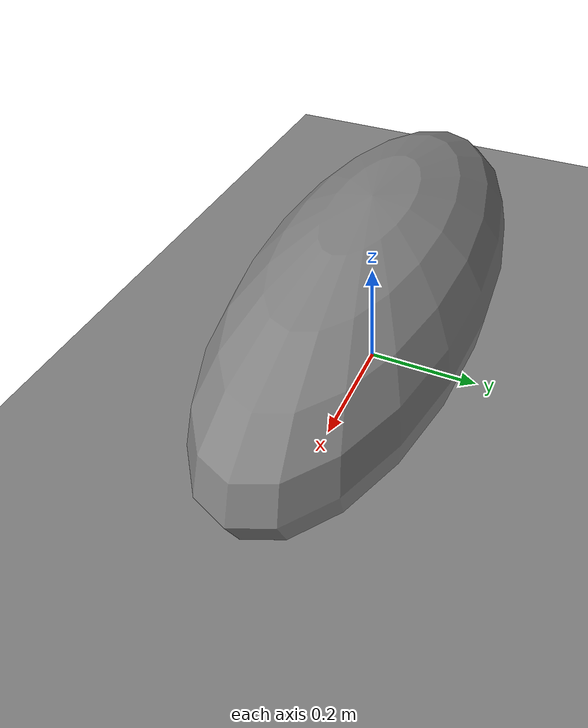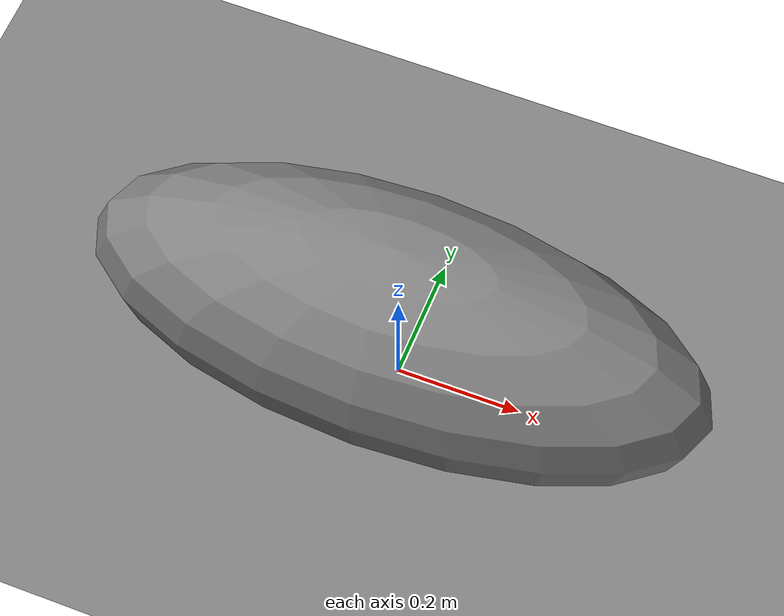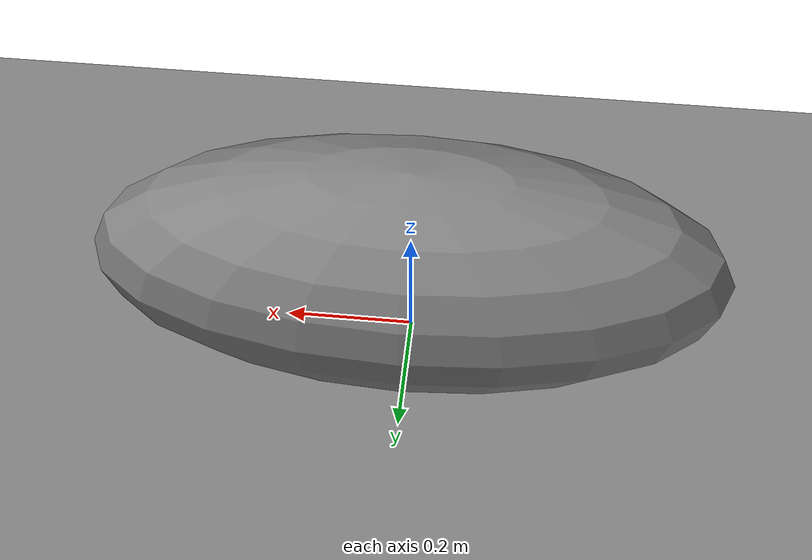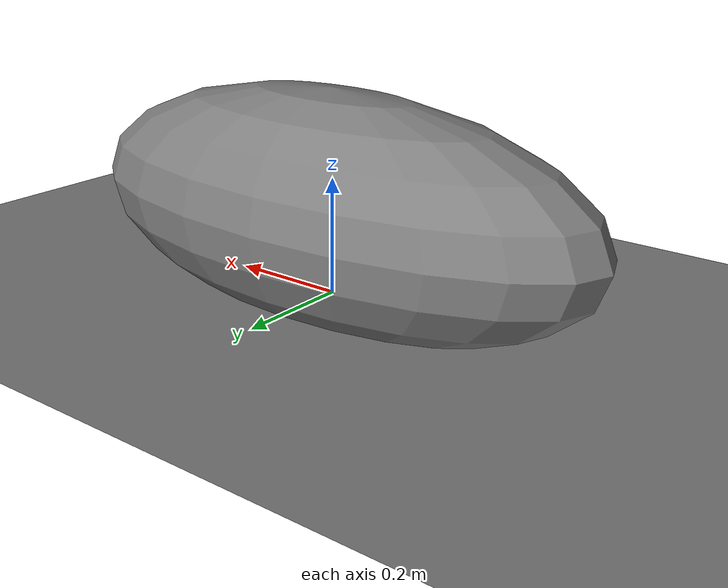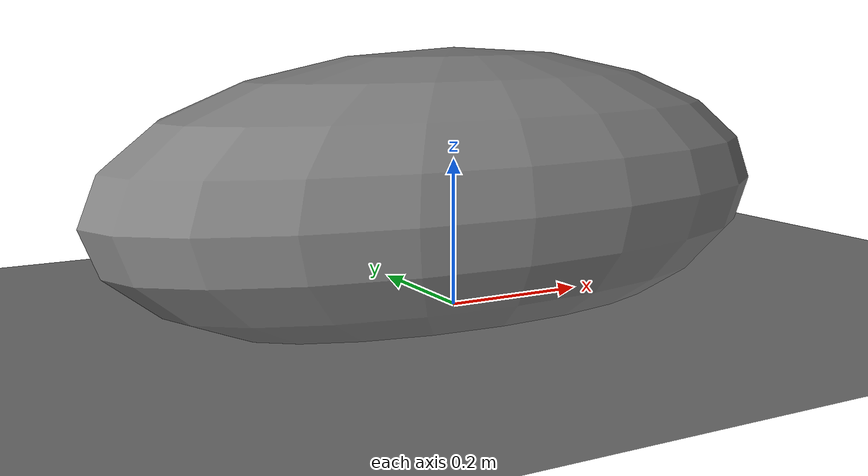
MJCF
<mujoco model="ellipsoid_plane_rotated">
            <option gravity="0 0 0" timestep="0.001"/>
            <worldbody>
                <geom name="floor" type="plane" size="10 10 0.1"/>
                <body name="ell" pos="0 0 0.15">
                    <joint type="free"/>
                    <geom type="ellipsoid" size="0.5 0.2 0.2"/>
                </body>
            </worldbody>
        </mujoco>
